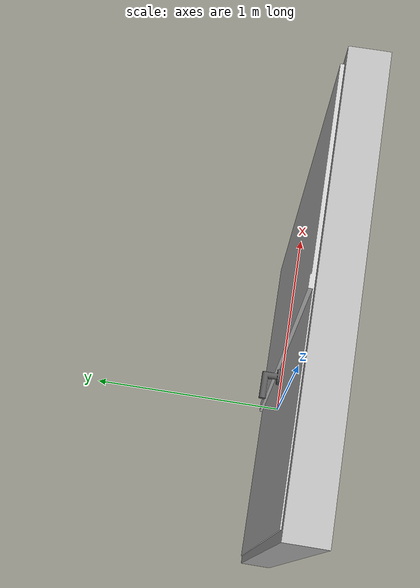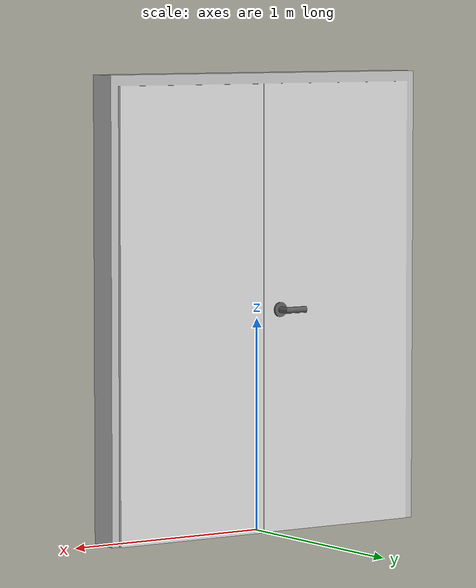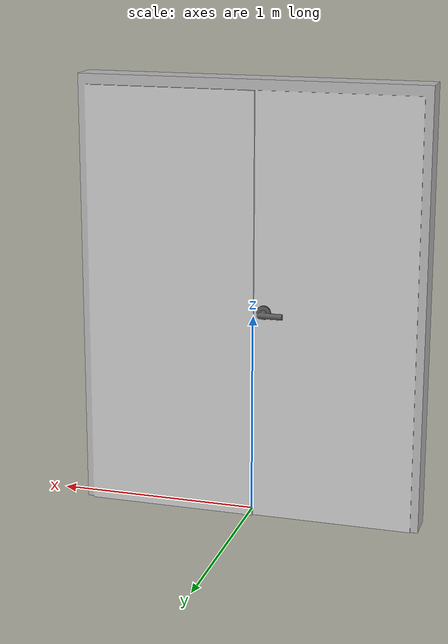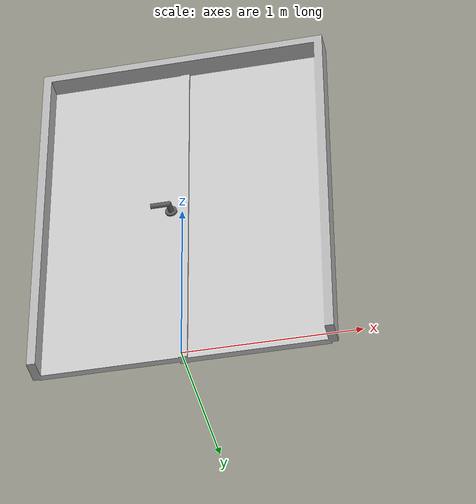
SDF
<?xml version="1.0"?>

<sdf version="1.6">
  <model name='door_160_metal_close'>
    <static>true</static>
    <link name="body">

        <visual name="visual">
          <geometry>
            <mesh><uri>model://models/door_160_metal_close/meshes/door_160_metal_close.dae</uri></mesh>
          </geometry>
        </visual>

        <collision name="collision">
          <geometry>
            <mesh><uri>model://models/door_160_metal_close/meshes/door_160_metal_close.dae</uri></mesh>
          </geometry>
        </collision>

    </link>
  </model>
</sdf>
